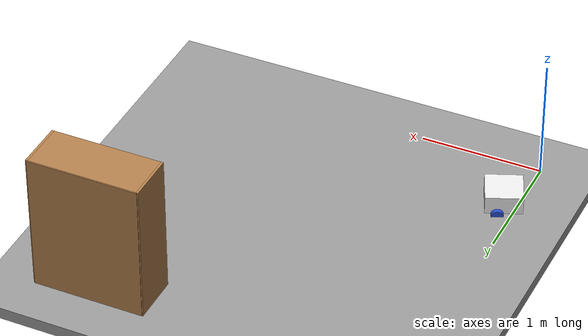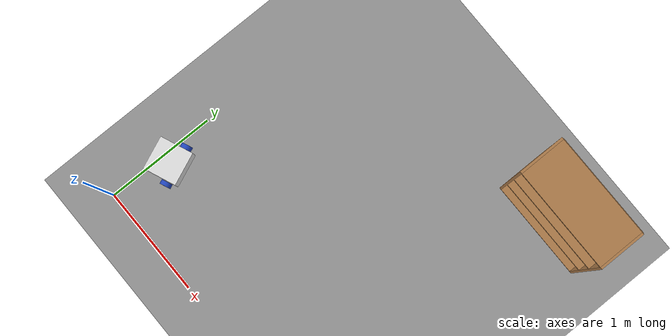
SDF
<sdf version="1.7">
 <world name="default">
  <light name="sun" type="directional">
   <pose>0 0 10 0 -0 0</pose>
   <diffuse>0.8 0.8 0.8 1</diffuse>
   <specular>0.2 0.2 0.2 1</specular>
   <attenuation>
    <range>1000</range>
    <constant>0.9</constant>
    <linear>0.01</linear>
    <quadratic>0.001</quadratic>
   </attenuation>
   <direction>-0.5 0.1 -0.9</direction>
   <spot><inner_angle>0</inner_angle><outer_angle>0</outer_angle><falloff>0</falloff></spot>
  </light>
  <model name="ground_plane">
   <static>1</static>
   <link name="link">
    <collision name="collision">
     <geometry><plane><normal>0 0 1</normal><size>100 100</size></plane></geometry>
     <surface>
      <contact><collide_bitmask>65535</collide_bitmask></contact>
      <friction><ode><mu>100</mu><mu2>50</mu2></ode></friction>
     </surface>
    </collision>
    <visual name="visual">
     <cast_shadows>0</cast_shadows>
     <geometry><plane><normal>0 0 1</normal><size>100 100</size></plane></geometry>
     <material>
      <script><uri>file://media/materials/scripts/gazebo.material</uri><name>Gazebo/Grey</name></script>
     </material>
    </visual>
   </link>
  </model>
  <gravity>0 0 -9.8</gravity>
  <magnetic_field>6e-06 2.3e-05 -4.2e-05</magnetic_field>
  <atmosphere type="adiabatic"/>
  <physics type="ode">
   <max_step_size>0.001</max_step_size>
   <real_time_factor>1</real_time_factor>
   <real_time_update_rate>1000</real_time_update_rate>
  </physics>
  <scene><ambient>0.4 0.4 0.4 1</ambient><background>0.7 0.7 0.7 1</background><shadows>1</shadows></scene>
  <audio><device>default</device></audio>
  <spherical_coordinates>
   <surface_model>EARTH_WGS84</surface_model>
   <latitude_deg>0</latitude_deg>
   <longitude_deg>0</longitude_deg>
   <elevation>0</elevation>
   <heading_deg>0</heading_deg>
  </spherical_coordinates>
  <model name="my_bot">
   <link name="base_link">
    <inertial>
     <pose>0.065 0 0.0625 0 -0 0</pose>
     <mass>0.6</mass>
     <inertia>
      <ixx>0.00525625</ixx>
      <ixy>0</ixy>
      <ixz>0.0005625</ixz>
      <iyy>0.00593125</iyy>
      <iyz>0</iyz>
      <izz>0.008275</izz>
     </inertia>
    </inertial>
    <collision name="base_link_fixed_joint_lump__chassis_collision">
     <pose>0.05 0 0.075 0 -0 0</pose>
     <geometry><box><size>0.3 0.3 0.15</size></box></geometry>
    </collision>
    <collision name="base_link_fixed_joint_lump__caster_wheel_collision_1">
     <pose>0.14 0 0 0 -0 0</pose>
     <geometry><sphere><radius>0.05</radius></sphere></geometry>
     <surface><friction><ode><mu>0.001</mu><mu2>0.001</mu2></ode></friction></surface>
    </collision>
    <visual name="base_link_fixed_joint_lump__chassis_visual">
     <pose>0.05 0 0.075 0 -0 0</pose>
     <geometry><box><size>0.3 0.3 0.15</size></box></geometry>
     <material>
      <script><name>Gazebo/White</name><uri>file://media/materials/scripts/gazebo.material</uri></script>
     </material>
    </visual>
    <visual name="base_link_fixed_joint_lump__caster_wheel_visual_1">
     <pose>0.14 0 0 0 -0 0</pose>
     <geometry><sphere><radius>0.05</radius></sphere></geometry>
     <material>
      <script><name>Gazebo/Black</name><uri>file://media/materials/scripts/gazebo.material</uri></script>
     </material>
    </visual>
   </link>
   <joint name="left_wheel_joint" type="revolute">
    <pose relative_to="base_link">0 0.175 0 1.5708 -0 0</pose>
    <parent>base_link</parent>
    <child>left_wheel</child>
    <axis>
     <xyz>0 0 1</xyz>
     <limit><lower>-1e+16</lower><upper>1e+16</upper></limit>
     <dynamics><spring_reference>0</spring_reference><spring_stiffness>0</spring_stiffness></dynamics>
    </axis>
   </joint>
   <link name="left_wheel">
    <pose relative_to="left_wheel_joint">0 0 0 0 -0 0</pose>
    <inertial>
     <mass>0.1</mass>
     <inertia>
      <ixx>7.58333e-05</ixx>
      <ixy>0</ixy>
      <ixz>0</ixz>
      <iyy>7.58333e-05</iyy>
      <iyz>0</iyz>
      <izz>0.000125</izz>
     </inertia>
    </inertial>
    <collision name="left_wheel_collision">
     <geometry><cylinder><length>0.04</length><radius>0.05</radius></cylinder></geometry>
    </collision>
    <visual name="left_wheel_visual">
     <geometry><cylinder><length>0.04</length><radius>0.05</radius></cylinder></geometry>
     <material>
      <script><name>Gazebo/Blue</name><uri>file://media/materials/scripts/gazebo.material</uri></script>
     </material>
    </visual>
   </link>
   <joint name="right_wheel_joint" type="revolute">
    <pose relative_to="base_link">0 -0.175 0 1.5708 -0 0</pose>
    <parent>base_link</parent>
    <child>right_wheel</child>
    <axis>
     <xyz>0 0 -1</xyz>
     <limit><lower>-1e+16</lower><upper>1e+16</upper></limit>
     <dynamics><spring_reference>0</spring_reference><spring_stiffness>0</spring_stiffness></dynamics>
    </axis>
   </joint>
   <link name="right_wheel">
    <pose relative_to="right_wheel_joint">0 0 0 0 -0 0</pose>
    <inertial>
     <mass>0.1</mass>
     <inertia>
      <ixx>7.58333e-05</ixx>
      <ixy>0</ixy>
      <ixz>0</ixz>
      <iyy>7.58333e-05</iyy>
      <iyz>0</iyz>
      <izz>0.000125</izz>
     </inertia>
    </inertial>
    <collision name="right_wheel_collision">
     <geometry><cylinder><length>0.04</length><radius>0.05</radius></cylinder></geometry>
    </collision>
    <visual name="right_wheel_visual">
     <geometry><cylinder><length>0.04</length><radius>0.05</radius></cylinder></geometry>
     <material>
      <script><name>Gazebo/Blue</name><uri>file://media/materials/scripts/gazebo.material</uri></script>
     </material>
    </visual>
   </link>
   <static>0</static>
   <plugin name="diff_drive" filename="libgazebo_ros_diff_drive.so">
    <left_joint>left_wheel_joint</left_joint>
    <right_joint>right_wheel_joint</right_joint>
    <wheel_separation>0.35</wheel_separation>
    <wheel_diameter>0.1</wheel_diameter>
    <max_wheel_torque>200</max_wheel_torque>
    <max_wheel_acceleration>10.0</max_wheel_acceleration>
    <odometry_frame>odom</odometry_frame>
    <robot_base_frame>base_link</robot_base_frame>
    <publish_odom>1</publish_odom>
    <publish_odom_tf>1</publish_odom_tf>
    <publish_wheel_tf>1</publish_wheel_tf>
   </plugin>
   <pose>0.145545 0.562003 0.050001 0 5e-06 -2.74685</pose>
  </model>
  <model name="ground_plane_0">
   <static>1</static>
   <link name="link">
    <collision name="collision">
     <geometry><plane><normal>0 0 1</normal><size>100 100</size></plane></geometry>
     <surface>
      <contact><collide_bitmask>65535</collide_bitmask></contact>
      <friction><ode><mu>100</mu><mu2>50</mu2></ode></friction>
     </surface>
    </collision>
    <visual name="visual">
     <cast_shadows>0</cast_shadows>
     <geometry><plane><normal>0 0 1</normal><size>100 100</size></plane></geometry>
     <material>
      <script><uri>file://media/materials/scripts/gazebo.material</uri><name>Gazebo/Grey</name></script>
     </material>
    </visual>
   </link>
   <pose>1.29009 2.02591 0 0 -0 0</pose>
  </model>
  <model name="bookshelf">
   <static>1</static>
   <link name="link">
    <inertial><mass>1</mass></inertial>
    <collision name="back">
     <pose>0 0.005 0.6 0 -0 0</pose>
     <geometry><box><size>0.9 0.01 1.2</size></box></geometry>
    </collision>
    <visual name="visual1">
     <pose>0 0.005 0.6 0 -0 0</pose>
     <geometry><box><size>0.9 0.01 1.2</size></box></geometry>
     <material>
      <script><uri>file://media/materials/scripts/gazebo.material</uri><name>Gazebo/Wood</name></script>
     </material>
    </visual>
    <collision name="left_side">
     <pose>0.45 -0.195 0.6 0 -0 0</pose>
     <geometry><box><size>0.02 0.4 1.2</size></box></geometry>
    </collision>
    <visual name="visual2">
     <pose>0.45 -0.195 0.6 0 -0 0</pose>
     <geometry><box><size>0.02 0.4 1.2</size></box></geometry>
     <material>
      <script><uri>file://media/materials/scripts/gazebo.material</uri><name>Gazebo/Wood</name></script>
     </material>
    </visual>
    <collision name="right_side">
     <pose>-0.45 -0.195 0.6 0 -0 0</pose>
     <geometry><box><size>0.02 0.4 1.2</size></box></geometry>
    </collision>
    <visual name="visual3">
     <pose>-0.45 -0.195 0.6 0 -0 0</pose>
     <geometry><box><size>0.02 0.4 1.2</size></box></geometry>
     <material>
      <script><uri>file://media/materials/scripts/gazebo.material</uri><name>Gazebo/Wood</name></script>
     </material>
    </visual>
    <collision name="bottom">
     <pose>0 -0.195 0.03 0 -0 0</pose>
     <geometry><box><size>0.88 0.4 0.06</size></box></geometry>
    </collision>
    <visual name="visual4">
     <pose>0 -0.195 0.03 0 -0 0</pose>
     <geometry><box><size>0.88 0.4 0.06</size></box></geometry>
     <material>
      <script><uri>file://media/materials/scripts/gazebo.material</uri><name>Gazebo/Wood</name></script>
     </material>
    </visual>
    <collision name="top">
     <pose>0 -0.195 1.19 0 -0 0</pose>
     <geometry><box><size>0.88 0.4 0.02</size></box></geometry>
    </collision>
    <visual name="visual5">
     <pose>0 -0.195 1.19 0 -0 0</pose>
     <geometry><box><size>0.88 0.4 0.02</size></box></geometry>
     <material>
      <script><uri>file://media/materials/scripts/gazebo.material</uri><name>Gazebo/Wood</name></script>
     </material>
    </visual>
    <collision name="low_shelf">
     <pose>0 -0.195 0.43 0 -0 0</pose>
     <geometry><box><size>0.88 0.4 0.02</size></box></geometry>
    </collision>
    <visual name="visual6">
     <pose>0 -0.195 0.43 0 -0 0</pose>
     <geometry><box><size>0.88 0.4 0.02</size></box></geometry>
     <material>
      <script><uri>file://media/materials/scripts/gazebo.material</uri><name>Gazebo/Wood</name></script>
     </material>
    </visual>
    <collision name="high_shelf">
     <pose>0 -0.195 0.8 0 -0 0</pose>
     <geometry><box><size>0.88 0.4 0.02</size></box></geometry>
    </collision>
    <visual name="visual7">
     <pose>0 -0.195 0.8 0 -0 0</pose>
     <geometry><box><size>0.88 0.4 0.02</size></box></geometry>
     <material>
      <script><uri>file://media/materials/scripts/gazebo.material</uri><name>Gazebo/Wood</name></script>
     </material>
    </visual>
   </link>
   <pose>2.46166 2.92708 0 0 -0 0</pose>
  </model>
 </world>
</sdf>
